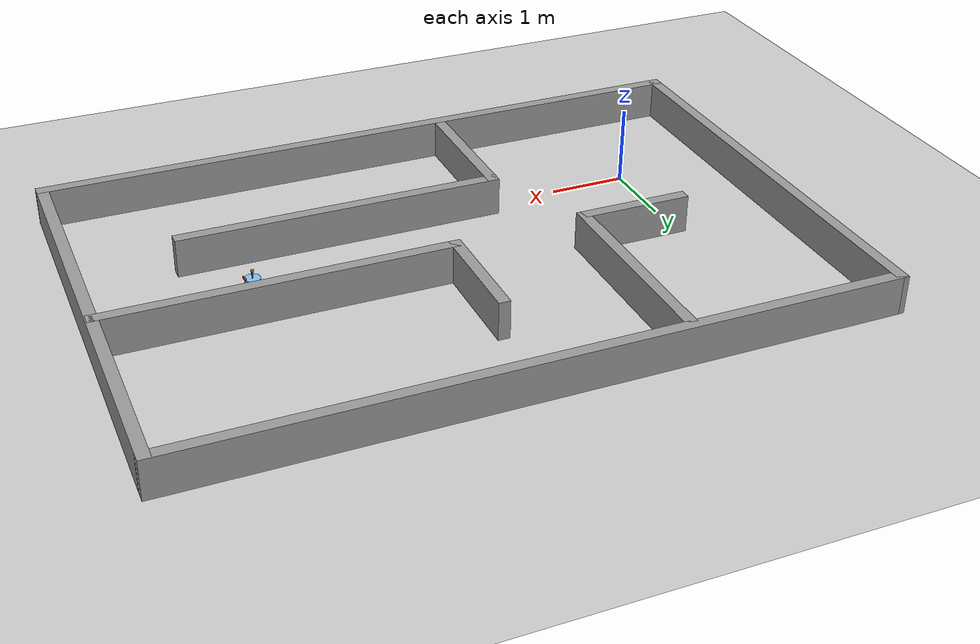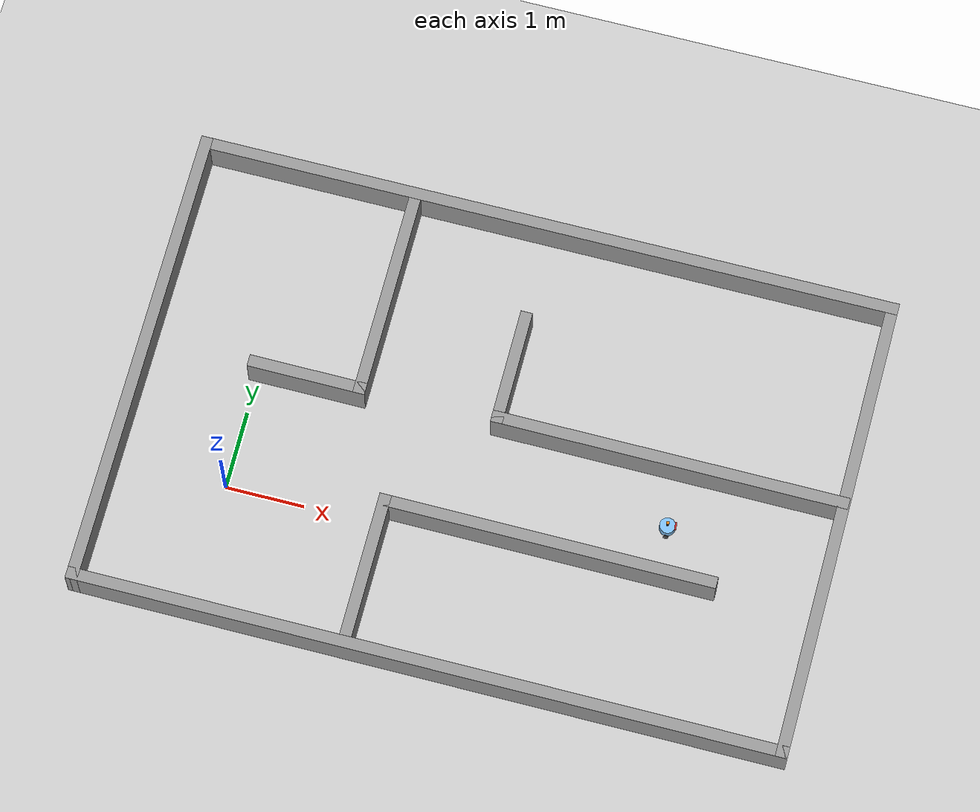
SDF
<sdf version="1.7">
 <world name="default">
  <light name="sun" type="directional">
   <pose>0 0 10 0 -0 0</pose>
   <diffuse>0.8 0.8 0.8 1</diffuse>
   <specular>0.2 0.2 0.2 1</specular>
   <attenuation>
    <range>1000</range>
    <constant>0.9</constant>
    <linear>0.01</linear>
    <quadratic>0.001</quadratic>
   </attenuation>
   <direction>-0.5 0.1 -0.9</direction>
   <spot><inner_angle>0</inner_angle><outer_angle>0</outer_angle><falloff>0</falloff></spot>
  </light>
  <model name="ground_plane">
   <static>1</static>
   <link name="link">
    <collision name="collision">
     <geometry><plane><normal>0 0 1</normal><size>100 100</size></plane></geometry>
     <surface><friction><ode><mu>100</mu><mu2>50</mu2></ode></friction></surface>
    </collision>
    <visual name="visual">
     <cast_shadows>0</cast_shadows>
     <geometry><plane><normal>0 0 1</normal><size>100 100</size></plane></geometry>
     <material>
      <script><uri>file://media/materials/scripts/gazebo.material</uri><name>Gazebo/Grey</name></script>
     </material>
    </visual>
   </link>
  </model>
  <gravity>0 0 -9.8</gravity>
  <magnetic_field>6e-06 2.3e-05 -4.2e-05</magnetic_field>
  <atmosphere type="adiabatic"/>
  <physics type="ode">
   <max_step_size>0.001</max_step_size>
   <real_time_factor>1</real_time_factor>
   <real_time_update_rate>1000</real_time_update_rate>
  </physics>
  <scene><ambient>0.4 0.4 0.4 1</ambient><background>0.7 0.7 0.7 1</background><shadows>1</shadows></scene>
  <audio><device>default</device></audio>
  <spherical_coordinates>
   <surface_model>EARTH_WGS84</surface_model>
   <latitude_deg>0</latitude_deg>
   <longitude_deg>0</longitude_deg>
   <elevation>0</elevation>
   <heading_deg>0</heading_deg>
  </spherical_coordinates>
  <model name="zoom3">
   <pose>3 1 0 0 -0 3.14</pose>
   <link name="Wall_0">
    <collision name="Wall_0_Collision">
     <geometry><box><size>6.01474 0.15 0.5</size></box></geometry>
     <pose>0 0 0.25 0 -0 0</pose>
    </collision>
    <visual name="Wall_0_Visual">
     <pose>0 0 0.25 0 -0 0</pose>
     <geometry><box><size>6.01474 0.15 0.5</size></box></geometry>
     <material>
      <script><uri>file://media/materials/scripts/gazebo.material</uri><name>Gazebo/Grey</name></script>
      <ambient>1 1 1 1</ambient>
     </material>
     <meta><layer>0</layer></meta>
    </visual>
    <pose>-4.4175 -0.259436 0 0 -0 -1.5708</pose>
   </link>
   <link name="Wall_1">
    <collision name="Wall_1_Collision">
     <geometry><box><size>8.98487 0.15 0.5</size></box></geometry>
     <pose>0 0 0.25 0 -0 0</pose>
    </collision>
    <visual name="Wall_1_Visual">
     <pose>0 0 0.25 0 -0 0</pose>
     <geometry><box><size>8.98487 0.15 0.5</size></box></geometry>
     <material>
      <script><uri>file://media/materials/scripts/gazebo.material</uri><name>Gazebo/Grey</name></script>
      <ambient>1 1 1 1</ambient>
     </material>
     <meta><layer>0</layer></meta>
    </visual>
    <pose>-0 -3.18444 0 0 -0 0.001698</pose>
   </link>
   <link name="Wall_11">
    <collision name="Wall_11_Collision">
     <geometry><box><size>2.75 0.15 0.5</size></box></geometry>
     <pose>0 0 0.25 0 -0 0</pose>
    </collision>
    <visual name="Wall_11_Visual">
     <pose>0 0 0.25 0 -0 0</pose>
     <geometry><box><size>2.75 0.15 0.5</size></box></geometry>
     <material>
      <script><uri>file://media/materials/scripts/gazebo.material</uri><name>Gazebo/Grey</name></script>
      <ambient>1 1 1 1</ambient>
     </material>
     <meta><layer>0</layer></meta>
    </visual>
    <pose>1.6815 -1.80594 0 0 -0 1.5708</pose>
   </link>
   <link name="Wall_12">
    <collision name="Wall_12_Collision">
     <geometry><box><size>1.5 0.15 0.5</size></box></geometry>
     <pose>0 0 0.25 0 -0 0</pose>
    </collision>
    <visual name="Wall_12_Visual">
     <pose>0 0 0.25 0 -0 0</pose>
     <geometry><box><size>1.5 0.15 0.5</size></box></geometry>
     <material>
      <script><uri>file://media/materials/scripts/gazebo.material</uri><name>Gazebo/Grey</name></script>
      <ambient>1 1 1 1</ambient>
     </material>
     <meta><layer>0</layer></meta>
    </visual>
    <pose>2.3565 -0.505936 0 0 -0 0</pose>
   </link>
   <link name="Wall_2">
    <collision name="Wall_2_Collision">
     <geometry><box><size>6.015 0.15 0.5</size></box></geometry>
     <pose>0 0 0.25 0 -0 0</pose>
    </collision>
    <visual name="Wall_2_Visual">
     <pose>0 0 0.25 0 -0 0</pose>
     <geometry><box><size>6.015 0.15 0.5</size></box></geometry>
     <material>
      <script><uri>file://media/materials/scripts/gazebo.material</uri><name>Gazebo/Grey</name></script>
      <ambient>1 1 1 1</ambient>
     </material>
     <meta><layer>0</layer></meta>
    </visual>
    <pose>4.4175 -0.244436 0 0 -0 1.5708</pose>
   </link>
   <link name="Wall_3">
    <collision name="Wall_3_Collision">
     <geometry><box><size>8.98484 0.15 0.5</size></box></geometry>
     <pose>0 0 0.25 0 -0 0</pose>
    </collision>
    <visual name="Wall_3_Visual">
     <pose>0 0 0.25 0 -0 0</pose>
     <geometry><box><size>8.98484 0.15 0.5</size></box></geometry>
     <material>
      <script><uri>file://media/materials/scripts/gazebo.material</uri><name>Gazebo/Grey</name></script>
      <ambient>1 1 1 1</ambient>
     </material>
     <meta><layer>0</layer></meta>
    </visual>
    <pose>-0 2.68056 0 0 -0 -3.1399</pose>
   </link>
   <link name="Wall_5">
    <collision name="Wall_5_Collision">
     <geometry><box><size>2 0.15 0.5</size></box></geometry>
     <pose>0 0 0.25 0 -0 0</pose>
    </collision>
    <visual name="Wall_5_Visual">
     <pose>0 0 0.25 0 -0 0</pose>
     <geometry><box><size>2 0.15 0.5</size></box></geometry>
     <material>
      <script><uri>file://media/materials/scripts/gazebo.material</uri><name>Gazebo/Grey</name></script>
      <ambient>1 1 1 1</ambient>
     </material>
     <meta><layer>0</layer></meta>
    </visual>
    <pose>1.0125 1.74806 0 0 -0 -1.5708</pose>
   </link>
   <link name="Wall_6">
    <collision name="Wall_6_Collision">
     <geometry><box><size>4.25 0.15 0.5</size></box></geometry>
     <pose>0 0 0.25 0 -0 0</pose>
    </collision>
    <visual name="Wall_6_Visual">
     <pose>0 0 0.25 0 -0 0</pose>
     <geometry><box><size>4.25 0.15 0.5</size></box></geometry>
     <material>
      <script><uri>file://media/materials/scripts/gazebo.material</uri><name>Gazebo/Grey</name></script>
      <ambient>1 1 1 1</ambient>
     </material>
     <meta><layer>0</layer></meta>
    </visual>
    <pose>-1.0375 0.823064 0 0 -0 3.14159</pose>
   </link>
   <link name="Wall_8">
    <collision name="Wall_8_Collision">
     <geometry><box><size>4.5 0.15 0.5</size></box></geometry>
     <pose>0 0 0.25 0 -0 0</pose>
    </collision>
    <visual name="Wall_8_Visual">
     <pose>0 0 0.25 0 -0 0</pose>
     <geometry><box><size>4.5 0.15 0.5</size></box></geometry>
     <material>
      <script><uri>file://media/materials/scripts/gazebo.material</uri><name>Gazebo/Grey</name></script>
      <ambient>1 1 1 1</ambient>
     </material>
     <meta><layer>0</layer></meta>
    </visual>
    <pose>-2.2275 -0.565936 0 0 -0 0</pose>
   </link>
   <link name="Wall_9">
    <collision name="Wall_9_Collision">
     <geometry><box><size>1.5 0.15 0.5</size></box></geometry>
     <pose>0 0 0.25 0 -0 0</pose>
    </collision>
    <visual name="Wall_9_Visual">
     <pose>0 0 0.25 0 -0 0</pose>
     <geometry><box><size>1.5 0.15 0.5</size></box></geometry>
     <material>
      <script><uri>file://media/materials/scripts/gazebo.material</uri><name>Gazebo/Grey</name></script>
      <ambient>1 1 1 1</ambient>
     </material>
     <meta><layer>0</layer></meta>
    </visual>
    <pose>-0.0525 -1.24094 0 0 -0 -1.5708</pose>
   </link>
   <static>1</static>
  </model>
  <model name="fishbot">
   <link name="base_footprint">
    <inertial>
     <pose>0.003704 0 0.104815 0 -0 0</pose>
     <mass>1.35</mass>
     <inertia>
      <ixx>0.00759936</ixx>
      <ixy>0</ixy>
      <ixz>-0.000305926</ixz>
      <iyy>0.00868084</iyy>
      <iyz>0</iyz>
      <izz>0.00620089</izz>
     </inertia>
    </inertial>
    <collision name="base_footprint_fixed_joint_lump__base_link_collision">
     <pose>0 0 0.091 0 -0 0</pose>
     <geometry><cylinder><length>0.12</length><radius>0.1</radius></cylinder></geometry>
    </collision>
    <collision name="base_footprint_fixed_joint_lump__back_caster_link_collision_1">
     <pose>-0.08 0 0.015 0 -0 0</pose>
     <geometry><sphere><radius>0.016</radius></sphere></geometry>
     <surface>
      <contact><ode><kp>1e+09</kp><kd>1</kd></ode></contact>
      <friction><ode><mu>0</mu><mu2>0</mu2></ode></friction>
     </surface>
    </collision>
    <collision name="base_footprint_fixed_joint_lump__camera_link_collision_2">
     <pose>0.1 0 0.166 0 -0 0</pose>
     <geometry><box><size>0.02 0.1 0.02</size></box></geometry>
    </collision>
    <collision name="base_footprint_fixed_joint_lump__front_caster_link_collision_3">
     <pose>0.08 0 0.015 0 -0 0</pose>
     <geometry><sphere><radius>0.016</radius></sphere></geometry>
     <surface>
      <contact><ode><kp>1e+09</kp><kd>1</kd></ode></contact>
      <friction><ode><mu>0</mu><mu2>0</mu2></ode></friction>
     </surface>
    </collision>
    <collision name="base_footprint_fixed_joint_lump__imu_link_collision_4">
     <pose>0 0 0.111 0 -0 0</pose>
     <geometry><box><size>0.02 0.02 0.02</size></box></geometry>
    </collision>
    <collision name="base_footprint_fixed_joint_lump__laser_cylinder_link_collision_5">
     <pose>0 0 0.201 0 -0 0</pose>
     <geometry><cylinder><length>0.1</length><radius>0.01</radius></cylinder></geometry>
    </collision>
    <collision name="base_footprint_fixed_joint_lump__laser_link_collision_6">
     <pose>0 0 0.251 0 -0 0</pose>
     <geometry><cylinder><length>0.02</length><radius>0.02</radius></cylinder></geometry>
    </collision>
    <visual name="base_footprint_fixed_joint_lump__base_link_visual">
     <pose>0 0 0.091 0 -0 0</pose>
     <geometry><cylinder><length>0.12</length><radius>0.1</radius></cylinder></geometry>
     <material>
      <script><name>Gazebo/SkyBlue</name><uri>file://media/materials/scripts/gazebo.material</uri></script>
     </material>
    </visual>
    <visual name="base_footprint_fixed_joint_lump__back_caster_link_visual_1">
     <pose>-0.08 0 0.015 0 -0 0</pose>
     <geometry><sphere><radius>0.016</radius></sphere></geometry>
     <material>
      <script><name>Gazebo/DarkGrey</name><uri>file://media/materials/scripts/gazebo.material</uri></script>
     </material>
    </visual>
    <visual name="base_footprint_fixed_joint_lump__camera_link_visual_2">
     <pose>0.1 0 0.166 0 -0 0</pose>
     <geometry><box><size>0.02 0.1 0.02</size></box></geometry>
     <material>
      <script><name>Gazebo/Red</name><uri>file://media/materials/scripts/gazebo.material</uri></script>
     </material>
    </visual>
    <visual name="base_footprint_fixed_joint_lump__front_caster_link_visual_3">
     <pose>0.08 0 0.015 0 -0 0</pose>
     <geometry><sphere><radius>0.016</radius></sphere></geometry>
     <material>
      <script><name>Gazebo/DarkGrey</name><uri>file://media/materials/scripts/gazebo.material</uri></script>
     </material>
    </visual>
    <visual name="base_footprint_fixed_joint_lump__imu_link_visual_4">
     <pose>0 0 0.111 0 -0 0</pose>
     <geometry><box><size>0.02 0.02 0.02</size></box></geometry>
    </visual>
    <visual name="base_footprint_fixed_joint_lump__laser_cylinder_link_visual_5">
     <pose>0 0 0.201 0 -0 0</pose>
     <geometry><cylinder><length>0.1</length><radius>0.01</radius></cylinder></geometry>
     <material>
      <script><name>Gazebo/DarkGrey</name><uri>file://media/materials/scripts/gazebo.material</uri></script>
     </material>
    </visual>
    <visual name="base_footprint_fixed_joint_lump__laser_link_visual_6">
     <pose>0 0 0.251 0 -0 0</pose>
     <geometry><cylinder><length>0.02</length><radius>0.02</radius></cylinder></geometry>
     <material>
      <script><name>Gazebo/Orange</name><uri>file://media/materials/scripts/gazebo.material</uri></script>
     </material>
    </visual>
    <sensor name="camera_sensor" type="depth">
     <plugin name="depth_camera" filename="libgazebo_ros_camera.so">
      <frame_name>camera_optical_link</frame_name>
     </plugin>
     <always_on>1</always_on>
     <update_rate>10</update_rate>
     <camera name="camera">
      <horizontal_fov>1.50098</horizontal_fov>
      <image><width>800</width><height>600</height><format>R8G8B8</format></image>
      <distortion><k1>0</k1><k2>0</k2><k3>0</k3><p1>0</p1><p2>0</p2><center>0.5 0.5</center></distortion>
      <clip><near>0.1</near><far>100</far></clip>
     </camera>
     <pose>0.1 0 0.166 0 -0 0</pose>
    </sensor>
    <sensor name="imu_sensor" type="imu">
     <plugin name="imu_plugin" filename="libgazebo_ros_imu_sensor.so">
      <ros><namespace>/</namespace><remapping>~/out:=imu</remapping></ros>
      <initial_orientation_as_reference>0</initial_orientation_as_reference>
     </plugin>
     <update_rate>100</update_rate>
     <always_on>1</always_on>
     <imu>
      <angular_velocity>
       <x>
        <noise type="gaussian">
         <mean>0</mean>
         <stddev>0.0002</stddev>
         <bias_mean>7.5e-06</bias_mean>
         <bias_stddev>8e-07</bias_stddev>
        </noise>
       </x>
       <y>
        <noise type="gaussian">
         <mean>0</mean>
         <stddev>0.0002</stddev>
         <bias_mean>7.5e-06</bias_mean>
         <bias_stddev>8e-07</bias_stddev>
        </noise>
       </y>
       <z>
        <noise type="gaussian">
         <mean>0</mean>
         <stddev>0.0002</stddev>
         <bias_mean>7.5e-06</bias_mean>
         <bias_stddev>8e-07</bias_stddev>
        </noise>
       </z>
      </angular_velocity>
      <linear_acceleration>
       <x>
        <noise type="gaussian">
         <mean>0</mean>
         <stddev>0.017</stddev>
         <bias_mean>0.1</bias_mean>
         <bias_stddev>0.001</bias_stddev>
        </noise>
       </x>
       <y>
        <noise type="gaussian">
         <mean>0</mean>
         <stddev>0.017</stddev>
         <bias_mean>0.1</bias_mean>
         <bias_stddev>0.001</bias_stddev>
        </noise>
       </y>
       <z>
        <noise type="gaussian">
         <mean>0</mean>
         <stddev>0.017</stddev>
         <bias_mean>0.1</bias_mean>
         <bias_stddev>0.001</bias_stddev>
        </noise>
       </z>
      </linear_acceleration>
     </imu>
     <pose>0 0 0.111 0 -0 0</pose>
    </sensor>
    <sensor name="laserscan" type="ray">
     <plugin name="laserscan" filename="libgazebo_ros_ray_sensor.so">
      <ros><namespace>/</namespace><remapping>~/out:=scan</remapping></ros>
      <output_type>sensor_msgs/LaserScan</output_type>
      <frame_name>laser_link</frame_name>
     </plugin>
     <always_on>1</always_on>
     <visualize>1</visualize>
     <update_rate>5</update_rate>
     <ray>
      <scan>
       <horizontal>
        <samples>360</samples>
        <resolution>1</resolution>
        <min_angle>0</min_angle>
        <max_angle>6.28</max_angle>
       </horizontal>
       <vertical><samples>1</samples><min_angle>0</min_angle><max_angle>0</max_angle></vertical>
      </scan>
      <range><min>0.12</min><max>8</max><resolution>0.015</resolution></range>
      <noise><type>gaussian</type><mean>0</mean><stddev>0.01</stddev></noise>
     </ray>
     <pose>0 0 0.251 0 -0 0</pose>
    </sensor>
   </link>
   <joint name="left_wheel_joint" type="revolute">
    <pose relative_to="base_footprint">0 0.1 0.031 0 -0 0</pose>
    <parent>base_footprint</parent>
    <child>left_wheel_link</child>
    <axis>
     <xyz>0 1 0</xyz>
     <limit><lower>-1e+16</lower><upper>1e+16</upper></limit>
     <dynamics><spring_reference>0</spring_reference><spring_stiffness>0</spring_stiffness></dynamics>
    </axis>
   </joint>
   <link name="left_wheel_link">
    <pose relative_to="left_wheel_joint">0 0 0 0 -0 0</pose>
    <inertial>
     <mass>0.05</mass>
     <inertia>
      <ixx>1.94667e-05</ixx>
      <ixy>0</ixy>
      <ixz>0</ixz>
      <iyy>1.94667e-05</iyy>
      <iyz>0</iyz>
      <izz>2.56e-05</izz>
     </inertia>
    </inertial>
    <collision name="left_wheel_link_collision">
     <pose>0 0 0 1.57079 -0 0</pose>
     <geometry><cylinder><length>0.04</length><radius>0.032</radius></cylinder></geometry>
     <surface>
      <contact><ode><kp>1e+09</kp><kd>1</kd></ode></contact>
      <friction><ode><mu>20</mu><mu2>20</mu2></ode></friction>
     </surface>
    </collision>
    <visual name="left_wheel_link_visual">
     <pose>0 0 0 1.57079 -0 0</pose>
     <geometry><cylinder><length>0.04</length><radius>0.032</radius></cylinder></geometry>
     <material>
      <script><name>Gazebo/Black</name><uri>file://media/materials/scripts/gazebo.material</uri></script>
     </material>
    </visual>
   </link>
   <joint name="right_wheel_joint" type="revolute">
    <pose relative_to="base_footprint">0 -0.1 0.031 0 -0 0</pose>
    <parent>base_footprint</parent>
    <child>right_wheel_link</child>
    <axis>
     <xyz>0 1 0</xyz>
     <limit><lower>-1e+16</lower><upper>1e+16</upper></limit>
     <dynamics><spring_reference>0</spring_reference><spring_stiffness>0</spring_stiffness></dynamics>
    </axis>
   </joint>
   <link name="right_wheel_link">
    <pose relative_to="right_wheel_joint">0 0 0 0 -0 0</pose>
    <inertial>
     <mass>0.05</mass>
     <inertia>
      <ixx>1.94667e-05</ixx>
      <ixy>0</ixy>
      <ixz>0</ixz>
      <iyy>1.94667e-05</iyy>
      <iyz>0</iyz>
      <izz>2.56e-05</izz>
     </inertia>
    </inertial>
    <collision name="right_wheel_link_collision">
     <pose>0 0 0 1.57079 -0 0</pose>
     <geometry><cylinder><length>0.04</length><radius>0.032</radius></cylinder></geometry>
     <surface>
      <contact><ode><kp>1e+09</kp><kd>1</kd></ode></contact>
      <friction><ode><mu>20</mu><mu2>20</mu2></ode></friction>
     </surface>
    </collision>
    <visual name="right_wheel_link_visual">
     <pose>0 0 0 1.57079 -0 0</pose>
     <geometry><cylinder><length>0.04</length><radius>0.032</radius></cylinder></geometry>
     <material>
      <script><name>Gazebo/Black</name><uri>file://media/materials/scripts/gazebo.material</uri></script>
     </material>
    </visual>
   </link>
   <static>0</static>
   <plugin name="gazebo_ros2_control" filename="libgazebo_ros2_control.so">
    <parameters>/home/jason/p/ros2/fishbot/install/fishbot/share/fishbot/config/fishbot_ros2_controller.yaml</parameters>
    <ros>
     <remapping>/fishbot_diff_drive_controller/cmd_vel_unstamped:=/cmd_vel</remapping>
     <remapping>/fishbot_diff_drive_controller/odom:=/odom</remapping>
    </ros>
   </plugin>
   <pose>5.39144 0.846626 0.001 0 -0 0.075808</pose>
  </model>
 </world>
</sdf>
